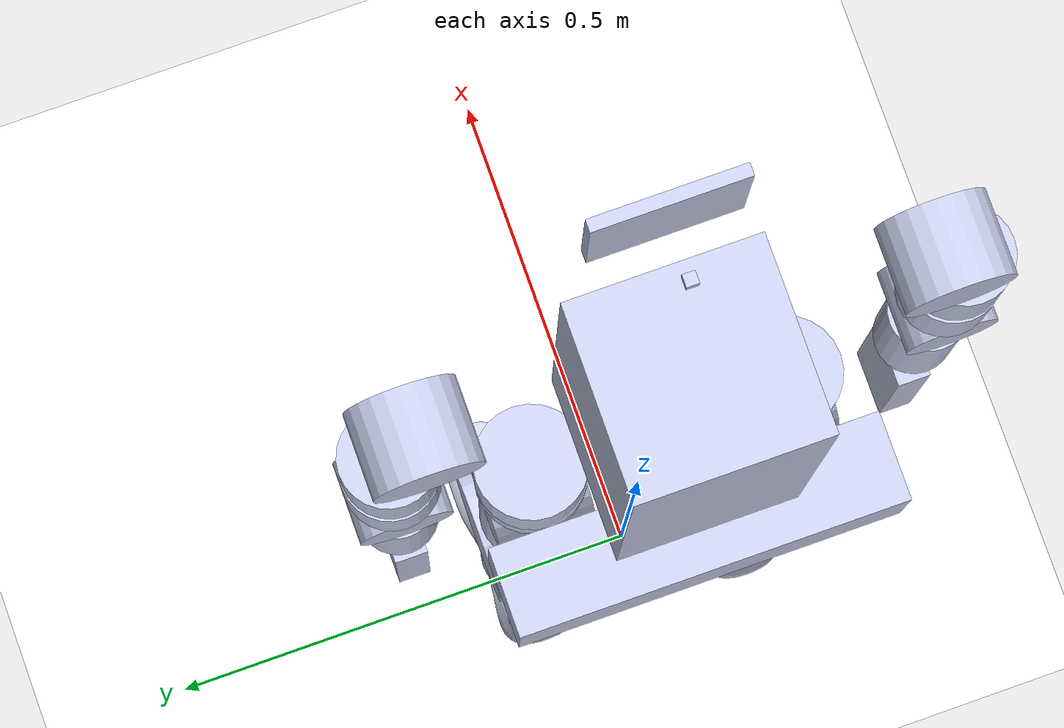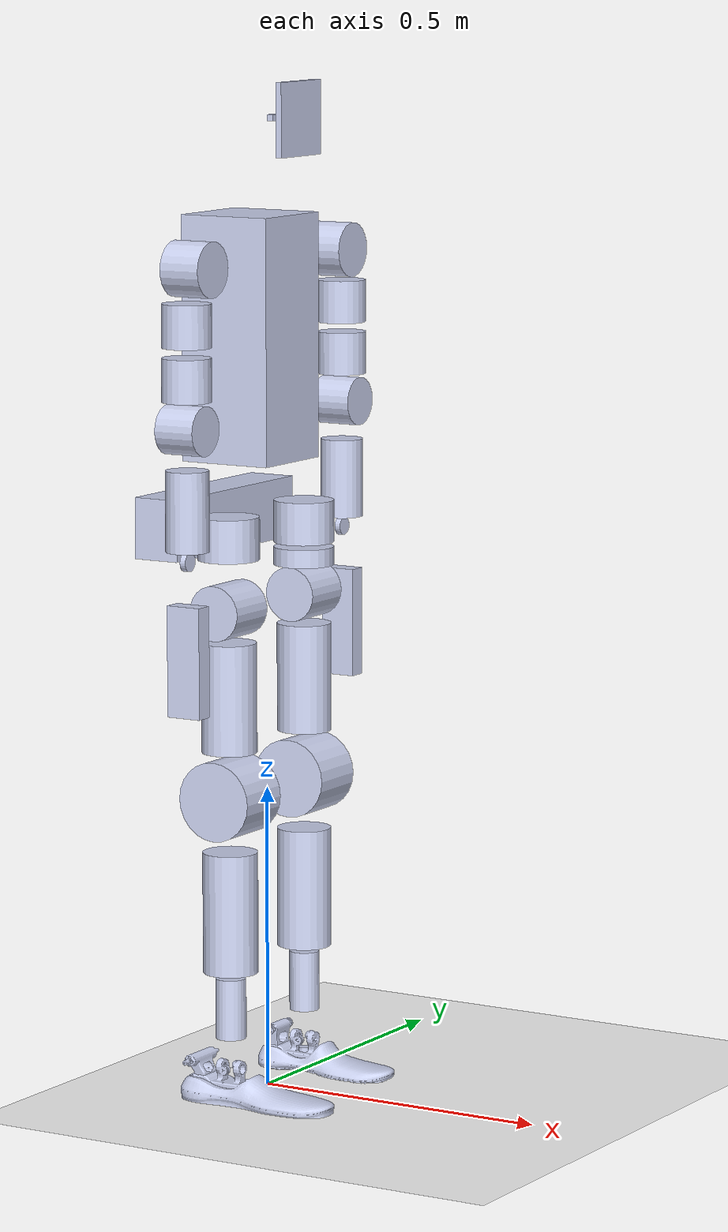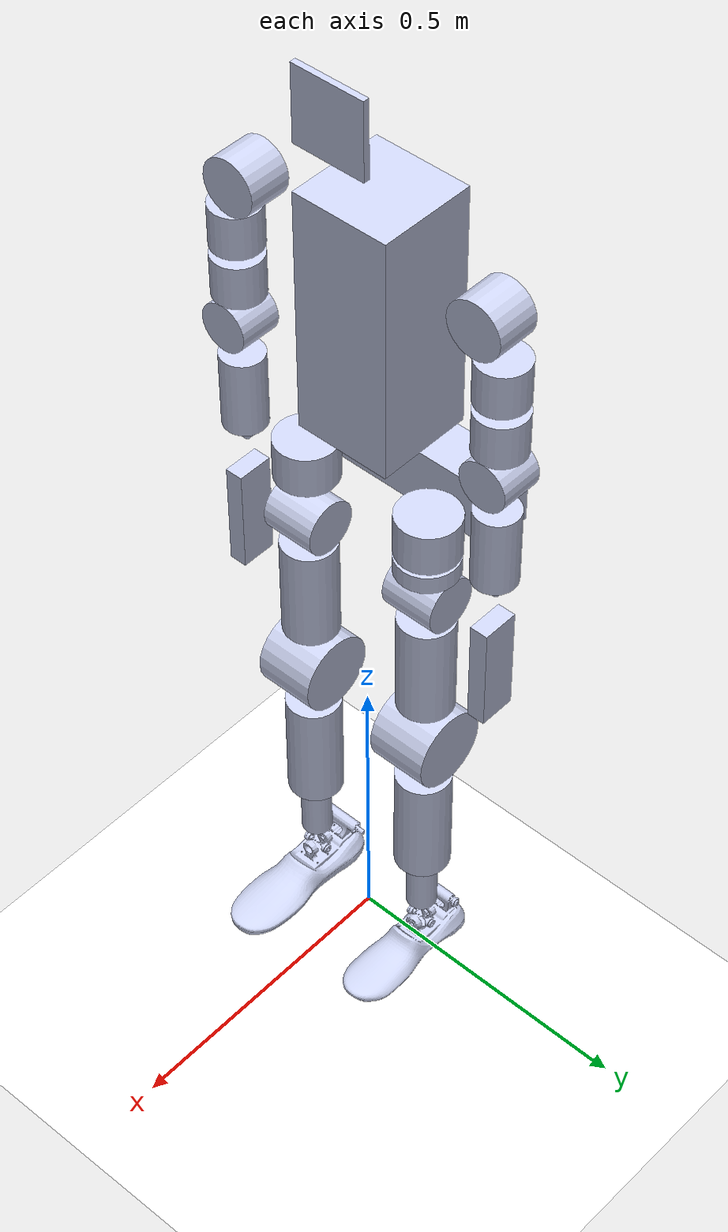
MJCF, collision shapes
<mujoco model="Q1P01_urdf">
  <compiler angle="radian" meshdir="../meshes/"/>

  <asset>
    <mesh name="torso_link" file="torso_link.STL"/>
    <mesh name="L_shoulder_pitch_link" file="L_shoulder_pitch_link.STL"/>
    <mesh name="L_shoulder_roll_link" file="L_shoulder_roll_link.STL"/>
    <mesh name="L_shoulder_yaw_link" file="L_shoulder_yaw_link.STL"/>
    <mesh name="L_elbow_link" file="L_elbow_link.STL"/>
    <mesh name="L_forearm_yaw_link" file="L_forearm_yaw_link.STL"/>
    <mesh name="L_wrist_roll_link" file="L_wrist_roll_link.STL"/>
    <mesh name="L_wrist_yaw_link" file="L_wrist_yaw_link.STL"/>
    <mesh name="R_shoulder_pitch_link" file="R_shoulder_pitch_link.STL"/>
    <mesh name="R_shoulder_roll_link" file="R_shoulder_roll_link.STL"/>
    <mesh name="R_shoulder_yaw_link" file="R_shoulder_yaw_link.STL"/>
    <mesh name="R_elbow_link" file="R_elbow_link.STL"/>
    <mesh name="R_forearm_yaw_link" file="R_forearm_yaw_link.STL"/>
    <mesh name="R_wrist_roll_link" file="R_wrist_roll_link.STL"/>
    <mesh name="R_wrist_yaw_link" file="R_wrist_yaw_link.STL"/>
    <mesh name="pelvis_link" file="pelvis_link.STL"/>
    <mesh name="L_hip_roll_link" file="L_hip_roll_link.STL"/>
    <mesh name="L_hip_yaw_link" file="L_hip_yaw_link.STL"/>
    <mesh name="L_hip_pitch_link" file="L_hip_pitch_link.STL"/>
    <mesh name="L_knee_link" file="L_knee_link.STL"/>
    <mesh name="L_ankle_pitch_link" file="L_ankle_pitch_link.STL"/>
    <mesh name="L_ankle_roll_link" file="L_ankle_roll_link.STL"/>
    <mesh name="R_hip_roll_link" file="R_hip_roll_link.STL"/>
    <mesh name="R_hip_yaw_link" file="R_hip_yaw_link.STL"/>
    <mesh name="R_hip_pitch_link" file="R_hip_pitch_link.STL"/>
    <mesh name="R_knee_link" file="R_knee_link.STL"/>
    <mesh name="R_ankle_pitch_link" file="R_ankle_pitch_link.STL"/>
    <mesh name="R_ankle_roll_link" file="R_ankle_roll_link.STL"/>
    <mesh name="head_yaw_link" file="head_yaw_link.STL"/>
    <mesh name="head_pitch_link" file="head_pitch_link.STL"/>
  </asset>

  <worldbody>
    <body name="torso_link" pos="0 0 0.992">
      <inertial pos="0.0009164 -6.3e-06 0.27347" quat="0.701534 0.000565351 0.000703926 0.712635" mass="9.7" diaginertia="0.88111 0.879492 0.0858744"/>
      <joint name="floating_base_joint" type="free" limited="false" actuatorfrclimited="false"/>
      <geom type="mesh" contype="0" conaffinity="0" group="1" density="0" rgba="0.79216 0.81961 0.93333 1" mesh="torso_link"/>
      <geom size="0.08 0.08 0.2" pos="-0.03 0 0.25" type="box" rgba="0.79216 0.81961 0.93333 1"/>
      <body name="L_shoulder_pitch_link" pos="0 0.21252 0.3773" quat="0.991445 0.130526 0 0">
        <inertial pos="-0.003348 -0.010925 -1.7e-06" quat="0.706924 0.70729 -0.000180578 -0.000180485" mass="1.52" diaginertia="0.002528 0.0023225 0.0015488"/>
        <joint name="L_shoulder_pitch_joint" pos="0 0 0" axis="0 1 0" range="-1.57 1.57" actuatorfrcrange="-20 20"/>
        <geom quat="0.991445 -0.130526 0 0" type="mesh" contype="0" conaffinity="0" group="1" density="0" rgba="0.79216 0.81961 0.93333 1" mesh="L_shoulder_pitch_link"/>
        <geom size="0.045 0.035" quat="0.5 0.5 0.5 0.5" type="cylinder" rgba="0.79216 0.81961 0.93333 1"/>
        <body name="L_shoulder_roll_link">
          <inertial pos="-0.0032511 0.0010542 -0.057652" quat="0.706828 -0.00108759 -0.00288591 0.707379" mass="0.75" diaginertia="0.00522422 0.00477661 0.00141257"/>
          <joint name="L_shoulder_roll_joint" pos="0 0 0" axis="1 0 0" range="-0.785 0.785" actuatorfrcrange="-20 20"/>
          <geom quat="0.991445 -0.130526 0 0" type="mesh" contype="0" conaffinity="0" group="1" density="0" rgba="0.79216 0.81961 0.93333 1" mesh="L_shoulder_roll_link"/>
          <geom size="0.04 0.035" pos="0 -0.001 -0.09" quat="0.991445 -0.130526 0 0" type="cylinder" rgba="0.79216 0.81961 0.93333 1"/>
          <body name="L_shoulder_yaw_link" pos="0 -0.043208 -0.25042" quat="0.991445 -0.130526 0 0">
            <inertial pos="-0.0031672 -0.0008248 0.048205" quat="0.999989 0.00441683 -0.000149031 -0.00151682" mass="1.87" diaginertia="0.010037 0.00994564 0.00168095"/>
            <joint name="L_shoulder_yaw_joint" pos="0 0 0" axis="0 0 1" range="-1.54 0" actuatorfrcrange="-23 23"/>
            <geom quat="0.707388 0 0 0.706825" type="mesh" contype="0" conaffinity="0" group="1" density="0" rgba="0.79216 0.81961 0.93333 1" mesh="L_shoulder_yaw_link"/>
            <geom size="0.04 0.035" pos="0 0 0.08" type="cylinder" rgba="0.79216 0.81961 0.93333 1"/>
            <body name="L_elbow_link">
              <inertial pos="-0.0053119 -0.001467 -0.023324" quat="0.6974 -0.115419 -0.0822952 0.702524" mass="0.4" diaginertia="0.00102476 0.000727475 0.000680861"/>
              <joint name="L_elbow_joint" pos="0 0 0" axis="0 1 0" range="-2 0" actuatorfrcrange="-23 23"/>
              <geom quat="0.707388 0 0 0.706825" type="mesh" contype="0" conaffinity="0" group="1" density="0" rgba="0.79216 0.81961 0.93333 1" mesh="L_elbow_link"/>
              <geom size="0.04 0.035" quat="0.707107 0 0.707107 0" type="cylinder" rgba="0.79216 0.81961 0.93333 1"/>
              <body name="L_forearm_yaw_link" pos="0 0 -0.21099">
                <inertial pos="-0.0030164 -0.0002166 0.09188" quat="0.711048 -0.00598829 -0.00783523 0.703074" mass="1.1" diaginertia="0.0112241 0.0110639 0.000802708"/>
                <joint name="L_forearm_yaw_joint" pos="0 0 0" axis="0 0 1" range="-1.57 1.57" actuatorfrcrange="-8.3 8.3"/>
                <geom type="mesh" contype="0" conaffinity="0" group="1" density="0" rgba="0.79216 0.81961 0.93333 1" mesh="L_forearm_yaw_link"/>
                <geom size="0.035 0.065" pos="0 0 0.082" type="cylinder" rgba="0.79216 0.81961 0.93333 1"/>
                <body name="L_wrist_roll_link">
                  <inertial pos="-0.0021241 -0.0018773 -1.03e-05" quat="0.464031 0.53355 -0.464031 0.53355" mass="0.28" diaginertia="0.0001213 9.4314e-05 9.3586e-05"/>
                  <joint name="L_wrist_roll_joint" pos="0 0 0" axis="1 0 0" range="-0.785 0.785" actuatorfrcrange="-3.3 3.3"/>
                  <geom type="mesh" contype="0" conaffinity="0" group="1" density="0" rgba="0.79216 0.81961 0.93333 1" mesh="L_wrist_roll_link"/>
                  <geom size="0.015 0.005" quat="0.707107 0 0.707107 0" type="cylinder" rgba="0.79216 0.81961 0.93333 1"/>
                  <body name="L_wrist_yaw_link">
                    <inertial pos="-6.6e-06 -0.0021885 -0.112885" quat="0.999993 0.0036481 5.10842e-05 -0.00113635" mass="0.82" diaginertia="0.0043724 0.00432712 0.000119376"/>
                    <joint name="L_wrist_yaw_joint" pos="0 0 0" axis="0 0 1" range="-0.785 0.785" actuatorfrcrange="-3.3 3.3"/>
                    <geom type="mesh" contype="0" conaffinity="0" group="1" density="0" rgba="0.79216 0.81961 0.93333 1" mesh="L_wrist_yaw_link"/>
                    <geom size="0.03 0.015 0.09" pos="0 0 -0.16" type="box" rgba="0.79216 0.81961 0.93333 1"/>
                  </body>
                </body>
              </body>
            </body>
          </body>
        </body>
      </body>
      <body name="R_shoulder_pitch_link" pos="0 -0.21252 0.3773" quat="0.991445 -0.130526 0 0">
        <inertial pos="-0.0033465 0.010925 -1.3e-06" quat="0.707244 0.70697 0.000180515 0.000180585" mass="1.52" diaginertia="0.002528 0.0023225 0.0015489"/>
        <joint name="R_shoulder_pitch_joint" pos="0 0 0" axis="0 1 0" range="-1.57 1.57" actuatorfrcrange="-42 42"/>
        <geom quat="0.991445 0.130526 0 0" type="mesh" contype="0" conaffinity="0" group="1" density="0" rgba="0.79216 0.81961 0.93333 1" mesh="R_shoulder_pitch_link"/>
        <geom size="0.045 0.035" quat="0.5 0.5 0.5 0.5" type="cylinder" rgba="0.79216 0.81961 0.93333 1"/>
        <body name="R_shoulder_roll_link">
          <inertial pos="-0.00325 -0.0010638 -0.057653" quat="0.707377 -0.00292314 -0.00105051 0.70683" mass="0.75" diaginertia="0.00522393 0.00477641 0.00141247"/>
          <joint name="R_shoulder_roll_joint" pos="0 0 0" axis="1 0 0" range="-0.785 0.785" actuatorfrcrange="-42 42"/>
          <geom quat="0.991445 0.130526 0 0" type="mesh" contype="0" conaffinity="0" group="1" density="0" rgba="0.79216 0.81961 0.93333 1" mesh="R_shoulder_roll_link"/>
          <geom size="0.04 0.035" pos="0 0.001 -0.09" quat="0.991445 0.130526 0 0" type="cylinder" rgba="0.79216 0.81961 0.93333 1"/>
          <body name="R_shoulder_yaw_link" pos="0 0.043208 -0.25042" quat="0.991445 0.130526 0 0">
            <inertial pos="-0.003167 0.0008258 0.048204" quat="0.999989 -0.00442282 -0.00014897 0.00153177" mass="1.87" diaginertia="0.010036 0.00994555 0.00168075"/>
            <joint name="R_shoulder_yaw_joint" pos="0 0 0" axis="0 0 1" range="0 1.57" actuatorfrcrange="-23 23"/>
            <geom quat="0.717911 0 0 0.696135" type="mesh" contype="0" conaffinity="0" group="1" density="0" rgba="0.79216 0.81961 0.93333 1" mesh="R_shoulder_yaw_link"/>
            <geom size="0.04 0.035" pos="0 0 0.08" type="cylinder" rgba="0.79216 0.81961 0.93333 1"/>
            <body name="R_elbow_link">
              <inertial pos="-0.0053221 0.0014743 -0.023308" quat="0.70257 -0.0807 -0.113678 0.697825" mass="0.4" diaginertia="0.00102465 0.000727328 0.000681118"/>
              <joint name="R_elbow_joint" pos="0 0 0" axis="0 1 0" range="-2 0" actuatorfrcrange="-23 23"/>
              <geom quat="0.707388 0 0 -0.706825" type="mesh" contype="0" conaffinity="0" group="1" density="0" rgba="0.79216 0.81961 0.93333 1" mesh="R_elbow_link"/>
              <geom size="0.04 0.035" quat="0.707107 0 0.707107 0" type="cylinder" rgba="0.79216 0.81961 0.93333 1"/>
              <body name="R_forearm_yaw_link" pos="0 0 -0.21099">
                <inertial pos="-0.0030168 0.0002163 0.09188" quat="0.703073 -0.0078387 -0.00599171 0.711049" mass="1.1" diaginertia="0.0112241 0.0110639 0.000802704"/>
                <joint name="R_forearm_yaw_joint" pos="0 0 0" axis="0 0 1" range="-1.57 1.57" actuatorfrcrange="-8.3 8.3"/>
                <geom type="mesh" contype="0" conaffinity="0" group="1" density="0" rgba="0.79216 0.81961 0.93333 1" mesh="R_forearm_yaw_link"/>
                <geom size="0.035 0.065" pos="0 0 0.082" type="cylinder" rgba="0.79216 0.81961 0.93333 1"/>
                <body name="R_wrist_roll_link">
                  <inertial pos="-0.0021241 0.0018773 -1.0333e-05" quat="0.53355 0.464031 -0.53355 0.464031" mass="0.28" diaginertia="0.0001213 9.4314e-05 9.3586e-05"/>
                  <joint name="R_wrist_roll_joint" pos="0 0 0" axis="1 0 0" range="-0.785 0.785" actuatorfrcrange="-3.3 3.3"/>
                  <geom type="mesh" contype="0" conaffinity="0" group="1" density="0" rgba="0.79216 0.81961 0.93333 1" mesh="R_wrist_roll_link"/>
                  <geom size="0.015 0.005" quat="0.707107 0 0.707107 0" type="cylinder" rgba="0.79216 0.81961 0.93333 1"/>
                  <body name="R_wrist_yaw_link">
                    <inertial pos="-6.6e-06 -0.0021885 -0.112885" quat="0.999993 -0.0036482 4.31985e-05 -0.00107224" mass="0.82" diaginertia="0.0043724 0.00432712 0.000119376"/>
                    <joint name="R_wrist_yaw_joint" pos="0 0 0" axis="0 1 0" range="-0.785 0.785" actuatorfrcrange="-3.3 3.3"/>
                    <geom type="mesh" contype="0" conaffinity="0" group="1" density="0" rgba="0.79216 0.81961 0.93333 1" mesh="R_wrist_yaw_link"/>
                    <geom size="0.03 0.015 0.09" pos="0 0 -0.16" type="box" rgba="0.79216 0.81961 0.93333 1"/>
                  </body>
                </body>
              </body>
            </body>
          </body>
        </body>
      </body>
      <body name="pelvis_link">
        <inertial pos="-0.06477 1.18e-05 -0.058888" quat="0.000833445 0.413426 -0.0011268 0.910537" mass="4.73" diaginertia="0.0788641 0.0504471 0.0400478"/>
        <joint name="pelvis_joint" pos="0 0 0" axis="0 0 1" range="-1.0472 1.0472" actuatorfrcrange="-20 20"/>
        <geom type="mesh" contype="0" conaffinity="0" group="1" density="0" rgba="0.79216 0.81961 0.93333 1" mesh="pelvis_link"/>
        <geom size="0.04 0.175 0.05" pos="-0.1 0 -0.05" type="box" rgba="0.79216 0.81961 0.93333 1"/>
        <body name="L_hip_roll_link" pos="0 0.115 -0.063238">
          <inertial pos="-0.013998 2.53e-05 0.0052806" quat="-0.000692594 0.737424 -0.00151171 0.675428" mass="1.23" diaginertia="0.00232185 0.0018636 0.00124685"/>
          <joint name="L_hip_roll_joint" pos="0 0 0" axis="1 0 0" range="-0.0873 0.7854" actuatorfrcrange="-90 90"/>
          <geom type="mesh" contype="0" conaffinity="0" group="1" density="0" rgba="0.79216 0.81961 0.93333 1" mesh="L_hip_roll_link"/>
          <geom size="0.05 0.035" type="cylinder" rgba="0.79216 0.81961 0.93333 1"/>
          <body name="L_hip_yaw_link">
            <inertial pos="-2.7849e-05 -0.0008477 -0.11745" quat="0.70559 -0.00241065 0.00257161 0.708611" mass="3.64" diaginertia="0.067335 0.064593 0.00869359"/>
            <joint name="L_hip_yaw_joint" pos="0 0 0" axis="0 0 1" range="-0.6981 0.6981" actuatorfrcrange="-60 60"/>
            <geom type="mesh" contype="0" conaffinity="0" group="1" density="0" rgba="0.79216 0.81961 0.93333 1" mesh="L_hip_yaw_link"/>
            <geom size="0.05 0.015" pos="-2.7849e-05 -0.0008477 -0.05745" type="cylinder" rgba="0.79216 0.81961 0.93333 1"/>
            <geom size="0.045 0.045" pos="-2.7849e-05 -0.0008477 -0.11745" quat="0.707107 0.707107 0 0" type="cylinder" rgba="0.79216 0.81961 0.93333 1"/>
            <body name="L_hip_pitch_link" pos="0 0 -0.14">
              <inertial pos="0.0098233 0.0015198 -0.1287" quat="0.999175 0.000180336 -0.0268112 -0.0304933" mass="1.93" diaginertia="0.0639148 0.0627277 0.00842376"/>
              <joint name="L_hip_pitch_joint" pos="0 0 0" axis="0 1 0" range="-1.6581 0.8727" actuatorfrcrange="-330 330"/>
              <geom type="mesh" contype="0" conaffinity="0" group="1" density="0" rgba="0.79216 0.81961 0.93333 1" mesh="L_hip_pitch_link"/>
              <geom size="0.045 0.09" pos="0 0 -0.12" type="cylinder" rgba="0.79216 0.81961 0.93333 1"/>
              <body name="L_knee_link" pos="0 -0.00083747 -0.28496">
                <inertial pos="0.0068711 0.0034967 -0.11181" quat="0.701847 -0.00823819 -0.0175635 0.712064" mass="6" diaginertia="0.199204 0.195842 0.0122702"/>
                <joint name="L_knee_joint" pos="0 0 0" axis="0 1 0" range="-0.0873 2.3562" actuatorfrcrange="-330 330"/>
                <geom type="mesh" contype="0" conaffinity="0" group="1" density="0" rgba="0.79216 0.81961 0.93333 1" mesh="L_knee_link"/>
                <geom size="0.045 0.1" pos="0 0 -0.19" type="cylinder" rgba="0.79216 0.81961 0.93333 1"/>
                <geom size="0.025 0.05" pos="0 0 -0.35" type="cylinder" rgba="0.79216 0.81961 0.93333 1"/>
                <geom size="0.065 0.05" quat="0.707107 0.707107 0 0" type="cylinder" rgba="0.79216 0.81961 0.93333 1"/>
                <body name="L_ankle_pitch_link" pos="0 0 -0.45087">
                  <inertial pos="0 5.1067e-05 -0.0029071" mass="0.05" diaginertia="4.7e-06 4.3e-06 3.7e-06"/>
                  <joint name="L_ankle_pitch_joint" pos="0 0 0" axis="0 1 0" range="-0.4363 0.4363" actuatorfrcrange="-36 36"/>
                  <geom type="mesh" contype="0" conaffinity="0" group="1" density="0" rgba="0.79216 0.81961 0.93333 1" mesh="L_ankle_pitch_link"/>
                  <geom size="0.001 0.0005" type="cylinder" rgba="0.79216 0.81961 0.93333 1"/>
                  <body name="L_ankle_roll_link">
                    <inertial pos="-0.030805 0.00039115 -0.033202" quat="0.419255 0.575242 0.549365 0.437629" mass="1.29" diaginertia="0.0083552 0.00791576 0.00191854"/>
                    <joint name="L_ankle_roll_joint" pos="0 0 0" axis="1 0 0" range="-0.3491 0.3491" actuatorfrcrange="-36 36"/>
                    <geom type="mesh" contype="0" conaffinity="0" group="1" density="0" rgba="0.79216 0.81961 0.93333 1" mesh="L_ankle_roll_link"/>
                    <geom size="0.01 0.005" pos="0 0 -0.02" type="cylinder" rgba="0.79216 0.81961 0.93333 1"/>
                    <geom type="mesh" rgba="0.79216 0.81961 0.93333 1" mesh="L_ankle_roll_link"/>
                  </body>
                </body>
              </body>
            </body>
          </body>
        </body>
        <body name="R_hip_roll_link" pos="0 -0.115 -0.063238">
          <inertial pos="-0.013997 -2.54e-05 0.0052806" quat="0.000870032 0.710231 0.0014768 0.703966" mass="1.23" diaginertia="0.00231369 0.0018636 0.00125502"/>
          <joint name="R_hip_roll_joint" pos="0 0 0" axis="1 0 0" range="-0.7854 0.0873" actuatorfrcrange="-90 90"/>
          <geom type="mesh" contype="0" conaffinity="0" group="1" density="0" rgba="0.79216 0.81961 0.93333 1" mesh="R_hip_roll_link"/>
          <geom size="0.05 0.035" type="cylinder" rgba="0.79216 0.81961 0.93333 1"/>
          <body name="R_hip_yaw_link">
            <inertial pos="-2.68e-05 0.00084756 -0.11745" quat="0.708612 0.00256942 -0.00241226 0.705589" mass="3.64" diaginertia="0.067335 0.064594 0.00869349"/>
            <joint name="R_hip_yaw_joint" pos="0 0 0" axis="0 0 1" range="-0.6981 0.6981" actuatorfrcrange="-60 60"/>
            <geom type="mesh" contype="0" conaffinity="0" group="1" density="0" rgba="0.79216 0.81961 0.93333 1" mesh="R_hip_yaw_link"/>
            <geom size="0.045 0.045" pos="-2.7849e-05 -0.0008477 -0.11745" quat="0.707107 0.707107 0 0" type="cylinder" rgba="0.79216 0.81961 0.93333 1"/>
            <body name="R_hip_pitch_link" pos="0 0 -0.14">
              <inertial pos="0.0097967 -0.0015629 -0.1287" quat="0.999186 -0.000218356 -0.0267878 0.030174" mass="1.93" diaginertia="0.0638893 0.0627028 0.0084238"/>
              <joint name="R_hip_pitch_joint" pos="0 0 0" axis="0 1 0" range="-1.6581 0.8727" actuatorfrcrange="-330 330"/>
              <geom type="mesh" contype="0" conaffinity="0" group="1" density="0" rgba="0.79216 0.81961 0.93333 1" mesh="R_hip_pitch_link"/>
              <geom size="0.045 0.09" pos="0 0 -0.12" type="cylinder" rgba="0.79216 0.81961 0.93333 1"/>
              <body name="R_knee_link" pos="0 0.00083747 -0.28496">
                <inertial pos="0.0068724 -0.0034964 -0.11181" quat="0.712086 -0.0175637 -0.00823871 0.701825" mass="6" diaginertia="0.199174 0.195812 0.0122702"/>
                <joint name="R_knee_joint" pos="0 0 0" axis="0 1 0" range="-0.0873 2.3562" actuatorfrcrange="-330 330"/>
                <geom type="mesh" contype="0" conaffinity="0" group="1" density="0" rgba="0.79216 0.81961 0.93333 1" mesh="R_knee_link"/>
                <geom size="0.045 0.1" pos="0 0 -0.19" type="cylinder" rgba="0.79216 0.81961 0.93333 1"/>
                <geom size="0.025 0.05" pos="0 0 -0.35" type="cylinder" rgba="0.79216 0.81961 0.93333 1"/>
                <geom size="0.065 0.05" quat="0.707107 0.707107 0 0" type="cylinder" rgba="0.79216 0.81961 0.93333 1"/>
                <body name="R_ankle_pitch_link" pos="0 0 -0.45087">
                  <inertial pos="0 -5.1111e-05 -0.0029071" mass="0.05" diaginertia="4.7e-06 4.3e-06 3.7e-06"/>
                  <joint name="R_ankle_pitch_joint" pos="0 0 0" axis="0 1 0" range="-0.4363 0.4363" actuatorfrcrange="-36 36"/>
                  <geom type="mesh" contype="0" conaffinity="0" group="1" density="0" rgba="0.79216 0.81961 0.93333 1" mesh="R_ankle_pitch_link"/>
                  <geom size="0.001 0.0005" type="cylinder" rgba="0.79216 0.81961 0.93333 1"/>
                  <body name="R_ankle_roll_link">
                    <inertial pos="-0.030805 -0.00039115 -0.033202" quat="0.421844 0.569459 0.555363 0.435129" mass="1.29" diaginertia="0.00835468 0.00791632 0.0019185"/>
                    <joint name="R_ankle_roll_joint" pos="0 0 0" axis="1 0 0" range="-0.3491 0.3491" actuatorfrcrange="-36 36"/>
                    <geom type="mesh" contype="0" conaffinity="0" group="1" density="0" rgba="0.79216 0.81961 0.93333 1" mesh="R_ankle_roll_link"/>
                    <geom type="mesh" rgba="0.79216 0.81961 0.93333 1" mesh="R_ankle_roll_link"/>
                  </body>
                </body>
              </body>
            </body>
          </body>
        </body>
      </body>
      <body name="head_yaw_link" pos="0.012 0 0.6048">
        <inertial pos="-0.00011265 -0.0013901 -0.0044247" quat="0.707192 0.70699 0.00466327 -0.00476251" mass="0.6" diaginertia="0.000924404 0.000901896 0.0002027"/>
        <joint name="head_yaw_joint" pos="0 0 0" axis="0 0 1" range="-1.57 1.57" actuatorfrcrange="-2.52 2.52"/>
        <geom type="mesh" contype="0" conaffinity="0" group="1" density="0" rgba="0.79216 0.81961 0.93333 1" mesh="head_yaw_link"/>
        <geom size="0.005 0.005 0.005" type="box" rgba="0.79216 0.81961 0.93333 1"/>
        <body name="head_pitch_link">
          <inertial pos="0.021311 0.00077107 0.028434" quat="0.4075 0.595105 0.573698 0.388156" mass="0.3" diaginertia="0.00407909 0.00360584 0.00296837"/>
          <joint name="head_pitch_joint" pos="0 0 0" axis="0 1 0" range="-0.785 0.157" actuatorfrcrange="-1.26 1.26"/>
          <geom type="mesh" contype="0" conaffinity="0" group="1" density="0" rgba="0.79216 0.81961 0.93333 1" mesh="head_pitch_link"/>
          <geom size="0.005 0.06 0.06" pos="0.05 0 0" type="box" rgba="0.79216 0.81961 0.93333 1"/>
        </body>
      </body>
    </body>
  </worldbody>

  <actuator>
    <motor name="L_hip_roll_joint" joint="L_hip_roll_joint" ctrlrange="-30 30"/>
    <motor name="L_hip_yaw_joint" joint="L_hip_yaw_joint" ctrlrange="-20 20"/>
    <motor name="L_hip_pitch_joint" joint="L_hip_pitch_joint" ctrlrange="-100 100"/>
    <motor name="L_knee_joint" joint="L_knee_joint" ctrlrange="-100 100"/>
    <motor name="L_ankle_pitch_joint" joint="L_ankle_pitch_joint" ctrlrange="-12 12"/>
    <motor name="L_ankle_roll_joint" joint="L_ankle_roll_joint" ctrlrange="-12 12"/>

    <motor name="R_hip_roll_joint" joint="R_hip_roll_joint" ctrlrange="-30 30"/>
    <motor name="R_hip_yaw_joint" joint="R_hip_yaw_joint" ctrlrange="-20 20"/>
    <motor name="R_hip_pitch_joint" joint="R_hip_pitch_joint" ctrlrange="-100 100"/>
    <motor name="R_knee_joint" joint="R_knee_joint" ctrlrange="-100 100"/>
    <motor name="R_ankle_pitch_joint" joint="R_ankle_pitch_joint" ctrlrange="-12 12"/>
    <motor name="R_ankle_roll_joint" joint="R_ankle_roll_joint" ctrlrange="-12 12"/>

    <motor name="pelvis_joint" joint="pelvis_joint" ctrlrange="-20 20"/>

    <motor name="L_shoulder_pitch_joint" joint="L_shoulder_pitch_joint" ctrlrange="-20 20"/>
    <motor name="L_shoulder_roll_joint" joint="L_shoulder_roll_joint" ctrlrange="-20 20"/>
    <motor name="L_shoulder_yaw_joint" joint="L_shoulder_yaw_joint" ctrlrange="-6.6 6.6"/>
    <motor name="L_elbow_joint" joint="L_elbow_joint" ctrlrange="-6.6 6.6"/>
    <motor name="L_forearm_yaw_joint" joint="L_forearm_yaw_joint" ctrlrange="-3.5 3.5"/>
    <motor name="L_wrist_roll_joint" joint="L_wrist_roll_joint" ctrlrange="-1.8 1.8"/>
    <motor name="L_wrist_yaw_joint" joint="L_wrist_yaw_joint" ctrlrange="-1.8 1.8"/>

    <motor name="R_shoulder_pitch_joint" joint="R_shoulder_pitch_joint" ctrlrange="-20 20"/>
    <motor name="R_shoulder_roll_joint" joint="R_shoulder_roll_joint" ctrlrange="-20 20"/>
    <motor name="R_shoulder_yaw_joint" joint="R_shoulder_yaw_joint" ctrlrange="-6.6 6.6"/>
    <motor name="R_elbow_joint" joint="R_elbow_joint" ctrlrange="-6.6 6.6"/>
    <motor name="R_forearm_yaw_joint" joint="R_forearm_yaw_joint" ctrlrange="-3.5 3.5"/>
    <motor name="R_wrist_roll_joint" joint="R_wrist_roll_joint" ctrlrange="-1.8 1.8"/>
    <motor name="R_wrist_yaw_joint" joint="R_wrist_yaw_joint" ctrlrange="-1.8 1.8"/>

    <motor name="head_yaw_joint" joint="head_yaw_joint" ctrlrange="-1.8 1.8"/>
    <motor name="head_pitch_joint" joint="head_pitch_joint" ctrlrange="-1.8 1.8"/>

  </actuator>

<!-- setup scene -->
  <statistic center="1.0 0.7 1.0" extent="0.8" />
  <visual>
    <headlight diffuse="0.6 0.6 0.6" ambient="0.1 0.1 0.1" specular="0.9 0.9 0.9" />
    <rgba haze="0.15 0.25 0.35 1" />
    <global azimuth="-140" elevation="-20" offwidth="2080" offheight="1170" />
  </visual>
  <asset>
    <texture type="skybox" builtin="gradient" rgb1="1 1 1" rgb2="1 1 1" width="800" height="800" />
    <texture type="2d" name="groundplane" builtin="checker" mark="edge" rgb1="1 1 1" rgb2="1 1 1" markrgb="0 0 0" width="300" height="300" />
    <material name="groundplane" texture="groundplane" texuniform="true" texrepeat="5 5" reflectance="0" />
    <texture type="skybox" builtin="gradient" rgb1=".4 .5 .6" rgb2="0 0 0" width="100" height="100" />
    <texture builtin="flat" height="1278" mark="cross" markrgb="1 1 1" name="texgeom" random="0.01" rgb1="0.8 0.6 0.4" rgb2="0.8 0.6 0.4" type="cube" width="127" />
    <texture name="texplane" builtin="checker" height="512" width="512" rgb1=".2 .3 .4" rgb2=".1 .15 .2" type="2d" />
    <material name="MatPlane" reflectance="0.5" shininess="0.01" specular="0.1" texrepeat="1 1" texture="texplane" texuniform="true" />
    <material name="geom" texture="texgeom" texuniform="true" />
  </asset>
  <worldbody>
    <geom name="floor" size="0 0 0.01" type="plane" material="groundplane" contype="1" conaffinity="0" priority="1" friction="0.6" condim="3" />
    <light diffuse=".5 .5 .5" pos="-3 -3 5" dir="3 3 -5" castshadow="true" />
  </worldbody>
</mujoco>
